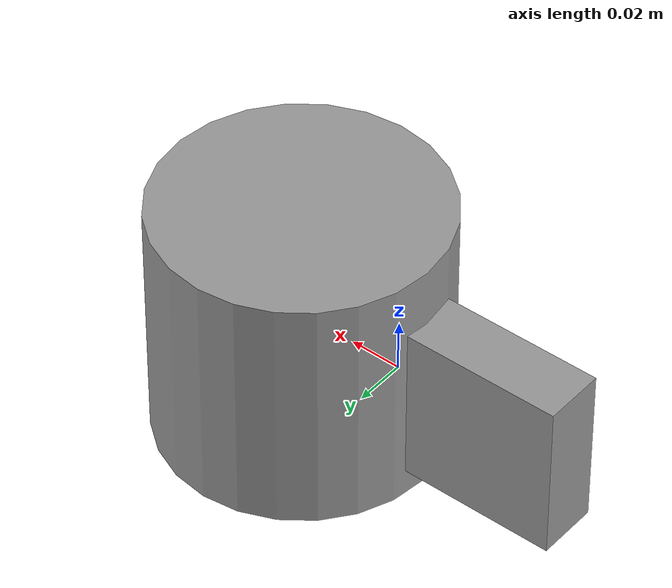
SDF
<?xml version='1.0'?>
<sdf version='1.7'>
  <model name='Dummy_Cup'>
    <link name='link_0'>
      <inertial>
        <mass>0.00112636</mass>
        <inertia>
          <ixx>1.68e-06</ixx>
          <ixy>0</ixy>
          <ixz>0</ixz>
          <iyy>1.68e-06</iyy>
          <iyz>0</iyz>
          <izz>1.63e-06</izz>
        </inertia>
        <pose>0 0 0 0 -0 0</pose>
      </inertial>
      <pose>0.041141 0.001499 0.003054 0 -0 0</pose>
      <gravity>1</gravity>
      <self_collide>0</self_collide>
      <kinematic>0</kinematic>
      <enable_wind>0</enable_wind>
      <visual name='visual'>
        <pose>0 0 0 0 -0 0</pose>
        <geometry>
          <cylinder>
            <radius>0.0538069</radius>
            <length>0.0962044</length>
          </cylinder>
        </geometry>
        <material>
          <lighting>1</lighting>
          <script>
            <uri>file://media/materials/scripts/gazebo.material</uri>
            <name>Gazebo/Grey</name>
          </script>
          <shader type='pixel'>
            <normal_map>__default__</normal_map>
          </shader>
          <emissive>0 0 0 1</emissive>
        </material>
        <transparency>0</transparency>
        <cast_shadows>1</cast_shadows>
      </visual>
      <collision name='collision'>
        <laser_retro>0</laser_retro>
        <max_contacts>10</max_contacts>
        <pose>0 0 0 0 -0 0</pose>
        <geometry>
          <cylinder>
            <radius>0.053807</radius>
            <length>0.096204</length>
          </cylinder>
        </geometry>
        <surface>
          <friction>
            <ode>
              <mu>300</mu>
              <mu2>300</mu2>
              <fdir1>0 0 0</fdir1>
              <slip1>0</slip1>
              <slip2>0</slip2>
            </ode>
            <torsional>
              <coefficient>1</coefficient>
              <patch_radius>0</patch_radius>
              <surface_radius>0</surface_radius>
              <use_patch_radius>1</use_patch_radius>
              <ode>
                <slip>0</slip>
              </ode>
            </torsional>
          </friction>
          <bounce>
            <restitution_coefficient>0</restitution_coefficient>
            <threshold>1e+06</threshold>
          </bounce>
          <contact>
            <collide_without_contact>0</collide_without_contact>
            <collide_without_contact_bitmask>1</collide_without_contact_bitmask>
            <collide_bitmask>1</collide_bitmask>
            <ode>
              <soft_cfm>0.04</soft_cfm>
              <soft_erp>0.2</soft_erp>
              <kp>1e+13</kp>
              <kd>1</kd>
              <max_vel>0.01</max_vel>
              <min_depth>0</min_depth>
            </ode>
            <bullet>
              <split_impulse>1</split_impulse>
              <split_impulse_penetration_threshold>-0.01</split_impulse_penetration_threshold>
              <soft_cfm>0.04</soft_cfm>
              <soft_erp>0.2</soft_erp>
              <kp>1e+13</kp>
              <kd>1</kd>
            </bullet>
          </contact>
        </surface>
      </collision>
    </link>
    <link name='link_1'>
      <inertial>
        <mass>9.0834e-05</mass>
        <inertia>
          <ixx>3.3952e-08</ixx>
          <ixy>0</ixy>
          <ixz>0</ixz>
          <iyy>5.86799e-08</iyy>
          <iyz>0</iyz>
          <izz>3.30224e-08</izz>
        </inertia>
        <pose>0 0 0 0 -0 0</pose>
      </inertial>
      <pose>-0.041142 -0.001498 -0.003054 0 -0 0</pose>
      <self_collide>0</self_collide>
      <enable_wind>0</enable_wind>
      <kinematic>0</kinematic>
      <visual name='visual'>
        <pose>0 0 0 0 -0 0</pose>
        <geometry>
          <box>
            <size>0.061763 0.023407 0.062749</size>
          </box>
        </geometry>
        <material>
          <lighting>1</lighting>
          <script>
            <uri>file://media/materials/scripts/gazebo.material</uri>
            <name>Gazebo/Grey</name>
          </script>
          <shader type='pixel'/>
          <emissive>0 0 0 1</emissive>
        </material>
        <transparency>0</transparency>
        <cast_shadows>1</cast_shadows>
      </visual>
      <collision name='collision'>
        <laser_retro>0</laser_retro>
        <max_contacts>10</max_contacts>
        <pose>0 0 0 0 -0 0</pose>
        <geometry>
          <box>
            <size>0.061763 0.023407 0.062749</size>
          </box>
        </geometry>
        <surface>
          <friction>
            <ode>
              <mu>1</mu>
              <mu2>1</mu2>
              <fdir1>0 0 0</fdir1>
              <slip1>0</slip1>
              <slip2>0</slip2>
            </ode>
            <torsional>
              <coefficient>1</coefficient>
              <patch_radius>0</patch_radius>
              <surface_radius>0</surface_radius>
              <use_patch_radius>1</use_patch_radius>
              <ode>
                <slip>0</slip>
              </ode>
            </torsional>
          </friction>
          <bounce>
            <restitution_coefficient>0</restitution_coefficient>
            <threshold>1e+06</threshold>
          </bounce>
          <contact>
            <collide_without_contact>0</collide_without_contact>
            <collide_without_contact_bitmask>1</collide_without_contact_bitmask>
            <collide_bitmask>1</collide_bitmask>
            <ode>
              <soft_cfm>0</soft_cfm>
              <soft_erp>0.2</soft_erp>
              <kp>1e+13</kp>
              <kd>1</kd>
              <max_vel>0.01</max_vel>
              <min_depth>0</min_depth>
            </ode>
            <bullet>
              <split_impulse>1</split_impulse>
              <split_impulse_penetration_threshold>-0.01</split_impulse_penetration_threshold>
              <soft_cfm>0</soft_cfm>
              <soft_erp>0.2</soft_erp>
              <kp>1e+13</kp>
              <kd>1</kd>
            </bullet>
          </contact>
        </surface>
      </collision>
    </link>
    <joint name='link_0_JOINT_0' type='fixed'>
      <parent>link_0</parent>
      <child>link_1</child>
      <pose>0 0 0 0 -0 0</pose>
      <physics>
        <ode>
          <limit>
            <cfm>0</cfm>
            <erp>0.2</erp>
          </limit>
          <suspension>
            <cfm>0</cfm>
            <erp>0.2</erp>
          </suspension>
        </ode>
      </physics>
    </joint>
    <static>0</static>
    <allow_auto_disable>1</allow_auto_disable>
  </model>
</sdf>
